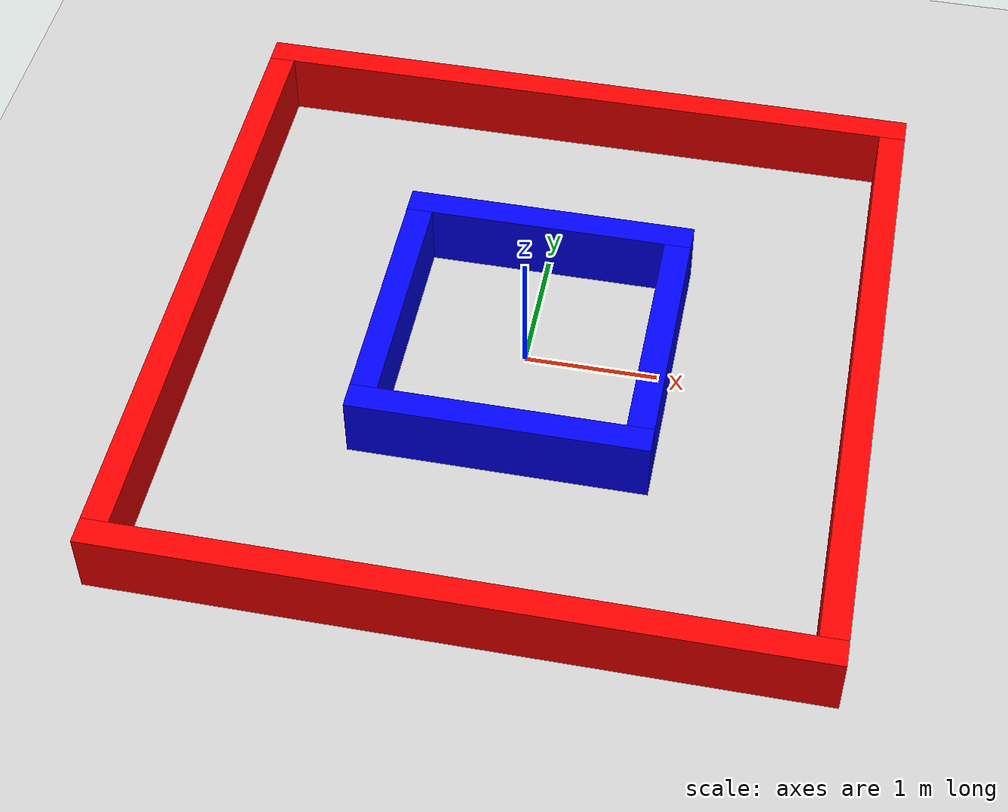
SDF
<?xml version="1.0" ?>
<sdf version="1.9">
  <world name="agentic_racer_track">
    <plugin filename="gz-sim-physics-system" name="gz::sim::systems::Physics"/>
    <plugin filename="gz-sim-user-commands-system" name="gz::sim::systems::UserCommands"/>
    <plugin filename="gz-sim-scene-broadcaster-system" name="gz::sim::systems::SceneBroadcaster"/>
    <plugin filename="gz-sim-sensors-system" name="gz::sim::systems::Sensors">
      <render_engine>ogre2</render_engine>
    </plugin>
    <plugin filename="gz-sim-contact-system" name="gz::sim::systems::Contact"/>

    <!-- T1.4: Lighting -->
    <light type="directional" name="sun">
      <cast_shadows>true</cast_shadows>
      <pose>0 0 10 0 0 0</pose>
      <diffuse>0.8 0.8 0.8 1</diffuse>
      <specular>0.2 0.2 0.2 1</specular>
      <attenuation>
        <range>1000</range>
        <constant>0.9</constant>
        <linear>0.01</linear>
        <quadratic>0.001</quadratic>
      </attenuation>
      <direction>-0.5 0.1 -0.9</direction>
    </light>

    <model name="ground_plane">
      <static>true</static>
      <link name="link">
        <collision name="collision">
          <geometry>
            <plane>
              <normal>0 0 1</normal>
              <size>100 100</size>
            </plane>
          </geometry>
        </collision>
        <visual name="visual">
          <geometry>
            <plane>
              <normal>0 0 1</normal>
              <size>100 100</size>
            </plane>
          </geometry>
          <material>
            <ambient>0.8 0.8 0.8 1</ambient>
            <diffuse>0.8 0.8 0.8 1</diffuse>
            <specular>0.8 0.8 0.8 1</specular>
          </material>
        </visual>
      </link>
    </model>

    <model name="track">
      <static>true</static>

      <!-- Outer North -->
      <link name="outer_north">
        <pose>0 2.5 0.25 0 0 0</pose>
        <collision name="collision">
          <geometry>
            <box><size>5.2 0.2 0.5</size></box>
          </geometry>
        </collision>
        <visual name="visual">
          <geometry>
            <box><size>5.2 0.2 0.5</size></box>
          </geometry>
          <material>
            <ambient>1 0 0 1</ambient>
            <diffuse>1 0 0 1</diffuse>
          </material>
        </visual>
      </link>

      <!-- Outer South -->
      <link name="outer_south">
        <pose>0 -2.5 0.25 0 0 0</pose>
        <collision name="collision">
          <geometry>
            <box><size>5.2 0.2 0.5</size></box>
          </geometry>
        </collision>
        <visual name="visual">
          <geometry>
            <box><size>5.2 0.2 0.5</size></box>
          </geometry>
          <material>
            <ambient>1 0 0 1</ambient>
            <diffuse>1 0 0 1</diffuse>
          </material>
        </visual>
      </link>

      <!-- Outer East -->
      <link name="outer_east">
        <pose>2.5 0 0.25 0 0 0</pose>
        <collision name="collision">
          <geometry>
            <box><size>0.2 4.8 0.5</size></box>
          </geometry>
        </collision>
        <visual name="visual">
          <geometry>
            <box><size>0.2 4.8 0.5</size></box>
          </geometry>
          <material>
            <ambient>1 0 0 1</ambient>
            <diffuse>1 0 0 1</diffuse>
          </material>
        </visual>
      </link>

      <!-- Outer West -->
      <link name="outer_west">
        <pose>-2.5 0 0.25 0 0 0</pose>
        <collision name="collision">
          <geometry>
            <box><size>0.2 4.8 0.5</size></box>
          </geometry>
        </collision>
        <visual name="visual">
          <geometry>
            <box><size>0.2 4.8 0.5</size></box>
          </geometry>
          <material>
            <ambient>1 0 0 1</ambient>
            <diffuse>1 0 0 1</diffuse>
          </material>
        </visual>
      </link>

      <!-- Inner North -->
      <link name="inner_north">
        <pose>0 1.0 0.25 0 0 0</pose>
        <collision name="collision">
          <geometry>
            <box><size>2.2 0.2 0.5</size></box>
          </geometry>
        </collision>
        <visual name="visual">
          <geometry>
            <box><size>2.2 0.2 0.5</size></box>
          </geometry>
          <material>
            <ambient>0 0 1 1</ambient>
            <diffuse>0 0 1 1</diffuse>
          </material>
        </visual>
      </link>

      <!-- Inner South -->
      <link name="inner_south">
        <pose>0 -1.0 0.25 0 0 0</pose>
        <collision name="collision">
          <geometry>
            <box><size>2.2 0.2 0.5</size></box>
          </geometry>
        </collision>
        <visual name="visual">
          <geometry>
            <box><size>2.2 0.2 0.5</size></box>
          </geometry>
          <material>
            <ambient>0 0 1 1</ambient>
            <diffuse>0 0 1 1</diffuse>
          </material>
        </visual>
      </link>

      <!-- Inner East -->
      <link name="inner_east">
        <pose>1.0 0 0.25 0 0 0</pose>
        <collision name="collision">
          <geometry>
            <box><size>0.2 1.8 0.5</size></box>
          </geometry>
        </collision>
        <visual name="visual">
          <geometry>
            <box><size>0.2 1.8 0.5</size></box>
          </geometry>
          <material>
            <ambient>0 0 1 1</ambient>
            <diffuse>0 0 1 1</diffuse>
          </material>
        </visual>
      </link>

      <!-- Inner West -->
      <link name="inner_west">
        <pose>-1.0 0 0.25 0 0 0</pose>
        <collision name="collision">
          <geometry>
            <box><size>0.2 1.8 0.5</size></box>
          </geometry>
        </collision>
        <visual name="visual">
          <geometry>
            <box><size>0.2 1.8 0.5</size></box>
          </geometry>
          <material>
            <ambient>0 0 1 1</ambient>
            <diffuse>0 0 1 1</diffuse>
          </material>
        </visual>
      </link>

    </model>
  </world>
</sdf>
